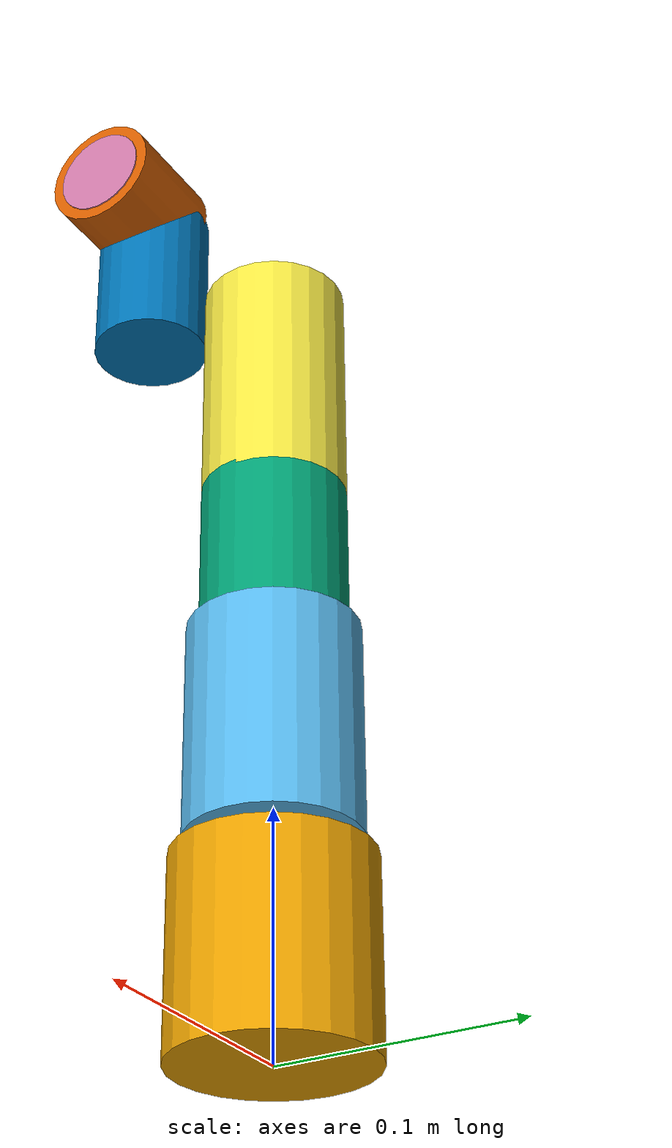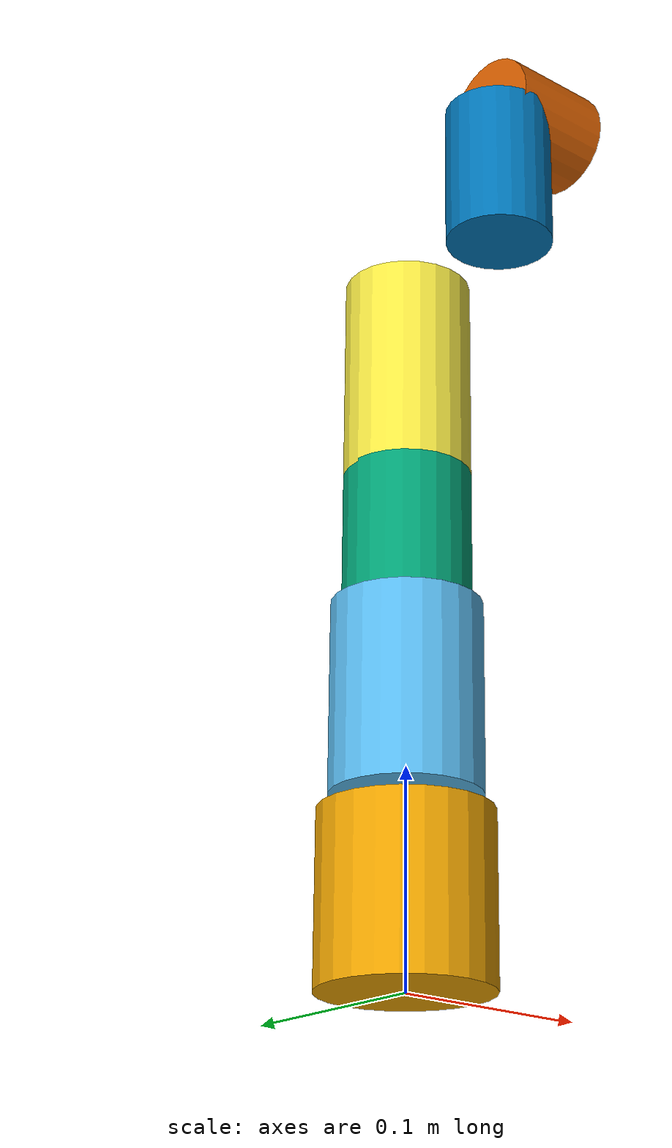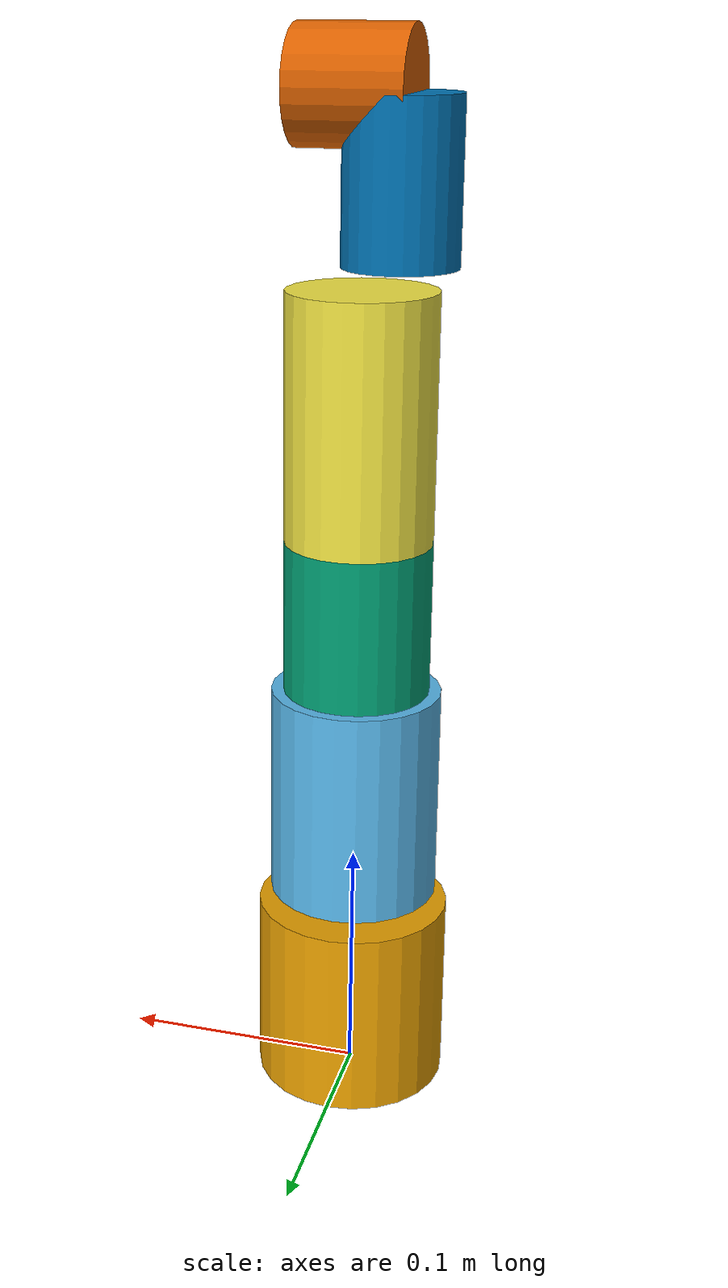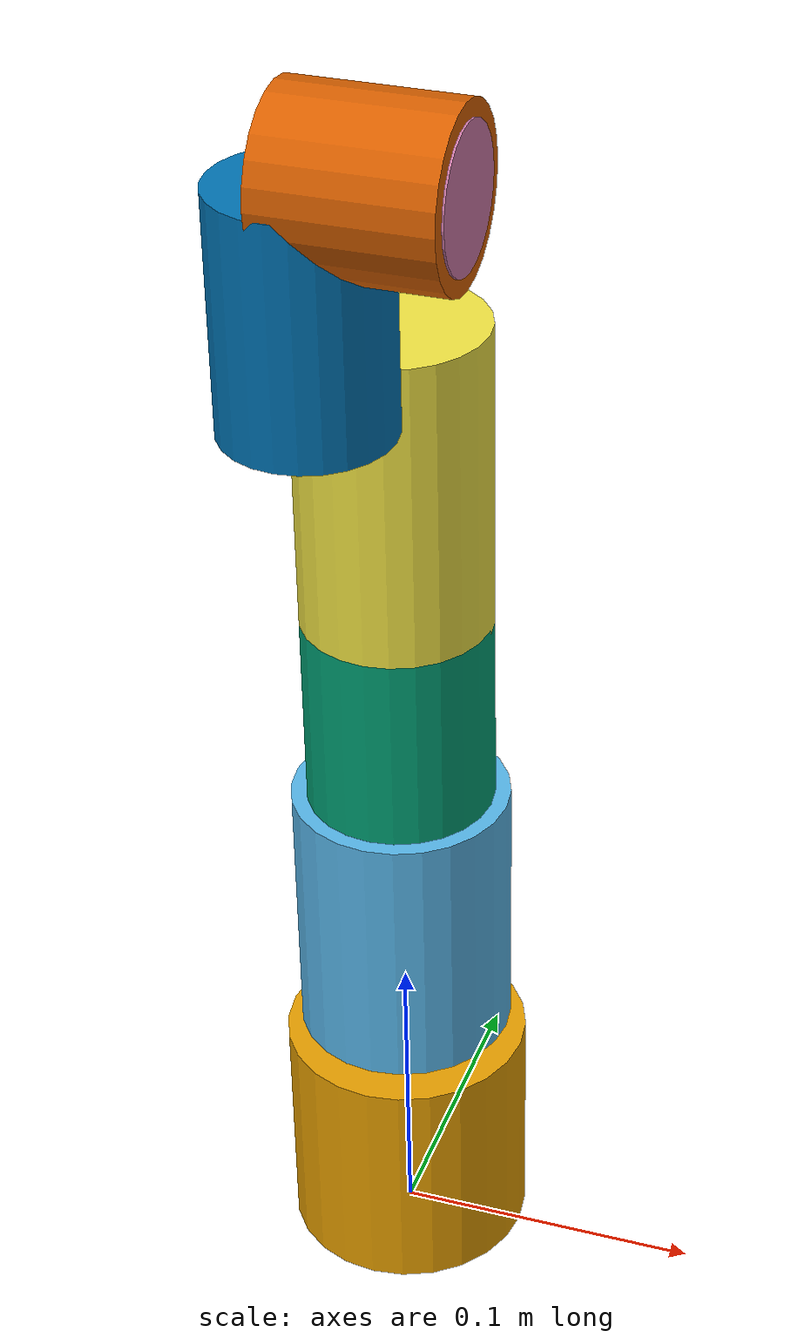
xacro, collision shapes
<?xml version="1.0"?>
<robot xmlns:xacro="http://www.ros.org/wiki/xacro" name="mycobot_280">

  <xacro:arg name="kol_kilit" default="false"/>
  <xacro:property name="kol_eklem" value="${'fixed' if '$(arg kol_kilit)' == 'true' else 'revolute'}"/>

  <!-- Link 1 (Base of the arm) -->
  <link name="joint1">
    <visual>
      <geometry>
        <mesh filename="package://mycobot_description/urdf/mycobot/joint1.dae"/>
      </geometry>
      <origin xyz="0.0 0 0" rpy="0 0 -1.5708"/>
    </visual>
    <collision>
      <geometry>
        <cylinder radius="0.04" length="0.08"/>
      </geometry>
      <origin xyz="0.0 0 0.04" rpy="0 0 0"/>
    </collision>
    <inertial>
      <origin xyz="0 0 0.04" rpy="0 0 0"/>
      <mass value="0.15"/>
      <inertia ixx="1.5e-4" ixy="0.0" ixz="0.0" iyy="1.5e-4" iyz="0.0" izz="1.5e-4"/>
    </inertial>
  </link>

  <!-- Joint 1 to 2 (-168 to +168 deg) -->
  <joint name="joint2_to_joint1" type="${kol_eklem}">
    <axis xyz="0 0 1"/>
    <limit effort="10.0" lower="-2.9322" upper="2.9322" velocity="1.5"/>
    <dynamics damping="0.5" friction="1.0"/>
    <parent link="joint1"/>
    <child link="joint2"/>
    <origin xyz="0 0 0.13156" rpy="0 0 0"/>
  </joint>

  <!-- Link 2 -->
  <link name="joint2">
    <visual>
      <geometry>
        <mesh filename="package://mycobot_description/urdf/mycobot/joint2.dae"/>
      </geometry>
      <origin xyz="0.0 0 -0.06096" rpy="0 0 -1.5708"/>
    </visual>
    <collision>
      <geometry>
        <cylinder radius="0.035" length="0.09"/>
      </geometry>
      <origin xyz="0.0 0 0" rpy="0 0 0"/>
    </collision>
    <inertial>
      <origin xyz="0 0 0" rpy="0 0 0"/>
      <mass value="0.13"/>
      <inertia ixx="1.3e-4" ixy="0.0" ixz="0.0" iyy="1.3e-4" iyz="0.0" izz="1.3e-4"/>
    </inertial>
  </link>

  <!-- Joint 2 to 3 (-135 to +135 deg) -->
  <joint name="joint3_to_joint2" type="${kol_eklem}">
    <axis xyz="0 0 1"/>
    <limit effort="10.0" lower="-2.3562" upper="2.3562" velocity="1.5"/>
    <dynamics damping="0.5" friction="1.0"/>
    <parent link="joint2"/>
    <child link="joint3"/>
    <origin xyz="0 0 0" rpy="0 1.5708 -1.5708"/>
  </joint>

  <!-- Link 3 -->
  <link name="joint3">
    <visual>
      <geometry>
        <mesh filename="package://mycobot_description/urdf/mycobot/joint3.dae"/>
      </geometry>
      <origin xyz="0.0 0 0.03256" rpy="0 -1.5708 0"/>
    </visual>
    <collision>
      <geometry>
        <cylinder radius="0.03" length="0.11"/>
      </geometry>
      <origin xyz="-0.055 0 0" rpy="0 1.5708 0"/>
    </collision>
    <inertial>
      <origin xyz="-0.055 0 0" rpy="0 0 0"/>
      <mass value="0.12"/>
      <inertia ixx="1.2e-4" ixy="0.0" ixz="0.0" iyy="1.2e-4" iyz="0.0" izz="1.2e-4"/>
    </inertial>
  </link>

  <!-- Joint 3 to 4 (-150 to +150 deg) -->
  <joint name="joint4_to_joint3" type="${kol_eklem}">
    <axis xyz="0 0 1"/>
    <limit effort="10.0" lower="-2.6180" upper="2.6180" velocity="1.5"/>
    <dynamics damping="0.5" friction="1.0"/>
    <parent link="joint3"/>
    <child link="joint4"/>
    <origin xyz="-0.1104 0 0" rpy="0 0 0"/>
  </joint>

  <!-- Link 4 -->
  <link name="joint4">
    <visual>
      <geometry>
        <mesh filename="package://mycobot_description/urdf/mycobot/joint4.dae"/>
      </geometry>
      <origin xyz="0.0 0 0.03056" rpy="0 -1.5708 0"/>
    </visual>
    <collision>
      <geometry>
        <cylinder radius="0.03" length="0.10"/>
      </geometry>
      <origin xyz="-0.048 0 0" rpy="0 1.5708 0"/>
    </collision>
    <inertial>
      <origin xyz="-0.048 0 0" rpy="0 0 0"/>
      <mass value="0.10"/>
      <inertia ixx="1.0e-4" ixy="0.0" ixz="0.0" iyy="1.0e-4" iyz="0.0" izz="1.0e-4"/>
    </inertial>
  </link>

  <!-- Joint 4 to 5 (-145 to +145 deg) -->
  <joint name="joint5_to_joint4" type="${kol_eklem}">
    <axis xyz="0 0 1"/>
    <limit effort="10.0" lower="-2.5307" upper="2.5307" velocity="1.5"/>
    <dynamics damping="0.5" friction="1.0"/>
    <parent link="joint4"/>
    <child link="joint5"/>
    <origin xyz="-0.096 0 0.06462" rpy="0 0 -1.5708"/>
  </joint>

  <!-- Link 5 -->
  <link name="joint5">
    <visual>
      <geometry>
        <mesh filename="package://mycobot_description/urdf/mycobot/joint5.dae"/>
      </geometry>
      <origin xyz="0.0 0 -0.03356" rpy="-1.5708 0 0"/>
    </visual>
    <collision>
      <geometry>
        <cylinder radius="0.025" length="0.07"/>
      </geometry>
      <origin xyz="0 -0.036 0" rpy="1.5708 0 0"/>
    </collision>
    <inertial>
      <origin xyz="0 -0.036 0" rpy="0 0 0"/>
      <mass value="0.08"/>
      <inertia ixx="1.0e-4" ixy="0.0" ixz="0.0" iyy="1.0e-4" iyz="0.0" izz="1.0e-4"/>
    </inertial>
  </link>

  <!-- Joint 5 to 6 (-165 to +165 deg) -->
  <joint name="joint6_to_joint5" type="${kol_eklem}">
    <axis xyz="0 0 1"/>
    <limit effort="10.0" lower="-2.8798" upper="2.8798" velocity="1.5"/>
    <dynamics damping="0.5" friction="1.0"/>
    <parent link="joint5"/>
    <child link="joint6"/>
    <origin xyz="0 -0.07318 0" rpy="1.5708 -1.5708 0"/>
  </joint>

  <!-- Link 6 -->
  <link name="joint6">
    <visual>
      <geometry>
        <mesh filename="package://mycobot_description/urdf/mycobot/joint6.dae"/>
      </geometry>
      <origin xyz="0 0.00 -0.038" rpy="0 0 0"/>
    </visual>
    <collision>
      <geometry>
        <cylinder radius="0.025" length="0.05"/>
      </geometry>
      <origin xyz="0 0.02 0" rpy="1.5708 0 0"/>
    </collision>
    <inertial>
      <origin xyz="0 0.02 0" rpy="0 0 0"/>
      <mass value="0.06"/>
      <inertia ixx="1.0e-4" ixy="0.0" ixz="0.0" iyy="1.0e-4" iyz="0.0" izz="1.0e-4"/>
    </inertial>
  </link>

  <!-- Joint 6 to 6_flange (-175 to +175 deg) -->
  <joint name="joint6output_to_joint6" type="${kol_eklem}">
    <axis xyz="0 0 1"/>
    <limit effort="10.0" lower="-3.0543" upper="3.0543" velocity="1.5"/>
    <dynamics damping="0.5" friction="1.0"/>
    <parent link="joint6"/>
    <child link="joint6_flange"/>
    <origin xyz="0 0.0456 0" rpy="-1.5708 0 0"/>
  </joint>

  <!-- Link 6 Flange -->
  <link name="joint6_flange">
    <visual>
      <geometry>
        <mesh filename="package://mycobot_description/urdf/mycobot/joint7.dae"/>
      </geometry>
      <origin xyz="0.0 0 -0.012" rpy="0 0 0"/>
    </visual>
    <collision>
      <geometry>
        <cylinder radius="0.02" length="0.015"/>
      </geometry>
      <origin xyz="0.0 0 -0.0075" rpy="0 0 0"/>
    </collision>
    <inertial>
      <origin xyz="0 0 -0.0075" rpy="0 0 0"/>
      <mass value="0.02"/>
      <inertia ixx="1.0e-4" ixy="0.0" ixz="0.0" iyy="1.0e-4" iyz="0.0" izz="1.0e-4"/>
    </inertial>
  </link>

</robot>
